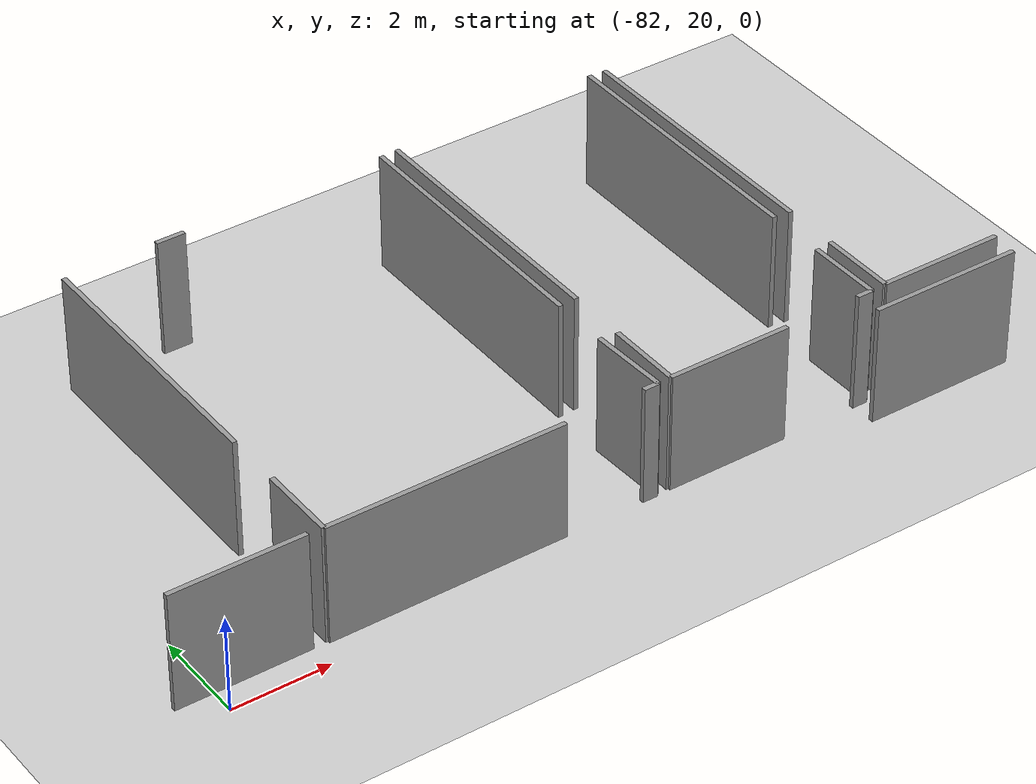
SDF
<sdf version="1.6">
 <world name="default">
  <model name="ground_plane">
   <static>1</static>
   <link name="link">
    <collision name="collision">
     <geometry><plane><normal>0 0 1</normal><size>100 100</size></plane></geometry>
     <surface><friction><ode><mu>100</mu><mu2>50</mu2></ode></friction></surface>
    </collision>
    <visual name="visual">
     <cast_shadows>0</cast_shadows>
     <geometry><plane><normal>0 0 1</normal><size>100 100</size></plane></geometry>
     <material>
      <script><uri>file://media/materials/scripts/gazebo.material</uri><name>Gazebo/Grey</name></script>
     </material>
    </visual>
   </link>
  </model>
  <model name="50010535_PLAN2">
   <static>1</static>
   <link name="Wall_15">
    <collision name="Wall_15_Collision">
     <geometry><box><size>3.17122291189 0.1 2.5</size></box></geometry>
     <pose>1.58561145594 0 1.25 0 0 0</pose>
    </collision>
    <visual name="Wall_15_Visual">
     <pose>1.58561145594 0 1.25 0 0 0</pose>
     <geometry><box><size>3.17122291189 0.1 2.5</size></box></geometry>
     <material>
      <script><uri>file://media/materials/scripts/gazebo.material</uri><name>Gazebo/Grey</name></script>
      <ambient>1 1 1 1</ambient>
     </material>
    </visual>
    <pose>34.2773898846 -9.76471858859 0 0 0 0.0</pose>
   </link>
   <link name="Wall_31">
    <collision name="Wall_31_Collision">
     <geometry><box><size>2.75115467939 0.1 2.5</size></box></geometry>
     <pose>1.37557733969 0 1.25 0 0 0</pose>
    </collision>
    <visual name="Wall_31_Visual">
     <pose>1.37557733969 0 1.25 0 0 0</pose>
     <geometry><box><size>2.75115467939 0.1 2.5</size></box></geometry>
     <material>
      <script><uri>file://media/materials/scripts/gazebo.material</uri><name>Gazebo/Grey</name></script>
      <ambient>1 1 1 1</ambient>
     </material>
    </visual>
    <pose>22.5746904443 -9.22699059103 0 0 0 3.14159265359</pose>
   </link>
   <link name="Wall_38">
    <collision name="Wall_38_Collision">
     <geometry><box><size>0.317401828428 0.1 2.5</size></box></geometry>
     <pose>0.158700914214 0 1.25 0 0 0</pose>
    </collision>
    <visual name="Wall_38_Visual">
     <pose>0.158700914214 0 1.25 0 0 0</pose>
     <geometry><box><size>0.317401828428 0.1 2.5</size></box></geometry>
     <material>
      <script><uri>file://media/materials/scripts/gazebo.material</uri><name>Gazebo/Grey</name></script>
      <ambient>1 1 1 1</ambient>
     </material>
    </visual>
    <pose>29.7936125741 -9.25392781586 0 0 0 3.14159265359</pose>
   </link>
   <link name="Wall_39">
    <collision name="Wall_39_Collision">
     <geometry><box><size>4.9470467526 0.1 2.5</size></box></geometry>
     <pose>2.4735233763 0 1.25 0 0 0</pose>
    </collision>
    <visual name="Wall_39_Visual">
     <pose>2.4735233763 0 1.25 0 0 0</pose>
     <geometry><box><size>4.9470467526 0.1 2.5</size></box></geometry>
     <material>
      <script><uri>file://media/materials/scripts/gazebo.material</uri><name>Gazebo/Grey</name></script>
      <ambient>1 1 1 1</ambient>
     </material>
    </visual>
    <pose>27.8231291653 -9.25392781586 0 0 0 3.14159265359</pose>
   </link>
   <link name="Wall_40">
    <collision name="Wall_40_Collision">
     <geometry><box><size>1.62080773556 0.1 2.5</size></box></geometry>
     <pose>0.810403867779 0 1.25 0 0 0</pose>
    </collision>
    <visual name="Wall_40_Visual">
     <pose>0.810403867779 0 1.25 0 0 0</pose>
     <geometry><box><size>1.62080773556 0.1 2.5</size></box></geometry>
     <material>
      <script><uri>file://media/materials/scripts/gazebo.material</uri><name>Gazebo/Grey</name></script>
      <ambient>1 1 1 1</ambient>
     </material>
    </visual>
    <pose>22.8760824127 -9.25392781586 0 0 0 1.57079632679</pose>
   </link>
   <link name="Wall_41">
    <collision name="Wall_41_Collision">
     <geometry><box><size>5.86410678323 0.1 2.5</size></box></geometry>
     <pose>2.93205339161 0 1.25 0 0 0</pose>
    </collision>
    <visual name="Wall_41_Visual">
     <pose>2.93205339161 0 1.25 0 0 0</pose>
     <geometry><box><size>5.86410678323 0.1 2.5</size></box></geometry>
     <material>
      <script><uri>file://media/materials/scripts/gazebo.material</uri><name>Gazebo/Grey</name></script>
      <ambient>1 1 1 1</ambient>
     </material>
    </visual>
    <pose>22.8760824127 -6.43731059764 0 0 0 1.57079632679</pose>
   </link>
   <link name="Wall_42">
    <collision name="Wall_42_Collision">
     <geometry><box><size>0.598209691048 0.1 2.5</size></box></geometry>
     <pose>0.299104845524 0 1.25 0 0 0</pose>
    </collision>
    <visual name="Wall_42_Visual">
     <pose>0.299104845524 0 1.25 0 0 0</pose>
     <geometry><box><size>0.598209691048 0.1 2.5</size></box></geometry>
     <material>
      <script><uri>file://media/materials/scripts/gazebo.material</uri><name>Gazebo/Grey</name></script>
      <ambient>1 1 1 1</ambient>
     </material>
    </visual>
    <pose>24.8046352357 -0.573203814413 0 0 0 0.0</pose>
   </link>
   <link name="Wall_43">
    <collision name="Wall_43_Collision">
     <geometry><box><size>5.84896094738 0.1 2.5</size></box></geometry>
     <pose>2.92448047369 0 1.25 0 0 0</pose>
    </collision>
    <visual name="Wall_43_Visual">
     <pose>2.92448047369 0 1.25 0 0 0</pose>
     <geometry><box><size>5.84896094738 0.1 2.5</size></box></geometry>
     <material>
      <script><uri>file://media/materials/scripts/gazebo.material</uri><name>Gazebo/Grey</name></script>
      <ambient>1 1 1 1</ambient>
     </material>
    </visual>
    <pose>29.7227117653 -0.573203814413 0 0 0 -1.57079632679</pose>
   </link>
   <link name="Wall_44">
    <collision name="Wall_44_Collision">
     <geometry><box><size>1.65574386442 0.1 2.5</size></box></geometry>
     <pose>0.827871932209 0 1.25 0 0 0</pose>
    </collision>
    <visual name="Wall_44_Visual">
     <pose>0.827871932209 0 1.25 0 0 0</pose>
     <geometry><box><size>1.65574386442 0.1 2.5</size></box></geometry>
     <material>
      <script><uri>file://media/materials/scripts/gazebo.material</uri><name>Gazebo/Grey</name></script>
      <ambient>1 1 1 1</ambient>
     </material>
    </visual>
    <pose>29.7227117653 -7.59970267403 0 0 0 -1.52796210827</pose>
   </link>
   <link name="Wall_45">
    <collision name="Wall_45_Collision">
     <geometry><box><size>0.328329193217 0.1 2.5</size></box></geometry>
     <pose>0.164164596609 0 1.25 0 0 0</pose>
    </collision>
    <visual name="Wall_45_Visual">
     <pose>0.164164596609 0 1.25 0 0 0</pose>
     <geometry><box><size>0.328329193217 0.1 2.5</size></box></geometry>
     <material>
      <script><uri>file://media/materials/scripts/gazebo.material</uri><name>Gazebo/Grey</name></script>
      <ambient>1 1 1 1</ambient>
     </material>
    </visual>
    <pose>34.5678544882 -9.23969682916 0 0 0 3.14159265359</pose>
   </link>
   <link name="Wall_46">
    <collision name="Wall_46_Collision">
     <geometry><box><size>2.57479209418 0.1 2.5</size></box></geometry>
     <pose>1.28739604709 0 1.25 0 0 0</pose>
    </collision>
    <visual name="Wall_46_Visual">
     <pose>1.28739604709 0 1.25 0 0 0</pose>
     <geometry><box><size>2.57479209418 0.1 2.5</size></box></geometry>
     <material>
      <script><uri>file://media/materials/scripts/gazebo.material</uri><name>Gazebo/Grey</name></script>
      <ambient>1 1 1 1</ambient>
     </material>
    </visual>
    <pose>32.6542950261 -9.23969682916 0 0 0 3.14159265359</pose>
   </link>
   <link name="Wall_47">
    <collision name="Wall_47_Collision">
     <geometry><box><size>1.58980451453 0.1 2.5</size></box></geometry>
     <pose>0.794902257263 0 1.25 0 0 0</pose>
    </collision>
    <visual name="Wall_47_Visual">
     <pose>0.794902257263 0 1.25 0 0 0</pose>
     <geometry><box><size>1.58980451453 0.1 2.5</size></box></geometry>
     <material>
      <script><uri>file://media/materials/scripts/gazebo.material</uri><name>Gazebo/Grey</name></script>
      <ambient>1 1 1 1</ambient>
     </material>
    </visual>
    <pose>30.079502932 -9.23969682916 0 0 0 1.57079632679</pose>
   </link>
   <link name="Wall_48">
    <collision name="Wall_48_Collision">
     <geometry><box><size>5.83689002116 0.1 2.5</size></box></geometry>
     <pose>2.91844501058 0 1.25 0 0 0</pose>
    </collision>
    <visual name="Wall_48_Visual">
     <pose>2.91844501058 0 1.25 0 0 0</pose>
     <geometry><box><size>5.83689002116 0.1 2.5</size></box></geometry>
     <material>
      <script><uri>file://media/materials/scripts/gazebo.material</uri><name>Gazebo/Grey</name></script>
      <ambient>1 1 1 1</ambient>
     </material>
    </visual>
    <pose>30.079502932 -6.39665063563 0 0 0 1.57079632679</pose>
   </link>
   <link name="Wall_49">
    <collision name="Wall_49_Collision">
     <geometry><box><size>5.86240414732 0.1 2.5</size></box></geometry>
     <pose>2.93120207366 0 1.25 0 0 0</pose>
    </collision>
    <visual name="Wall_49_Visual">
     <pose>2.93120207366 0 1.25 0 0 0</pose>
     <geometry><box><size>5.86240414732 0.1 2.5</size></box></geometry>
     <material>
      <script><uri>file://media/materials/scripts/gazebo.material</uri><name>Gazebo/Grey</name></script>
      <ambient>1 1 1 1</ambient>
     </material>
    </visual>
    <pose>34.5508281291 -0.559760614474 0 0 0 -1.57079632679</pose>
   </link>
   <link name="Wall_50">
    <collision name="Wall_50_Collision">
     <geometry><box><size>1.57337853326 0.1 2.5</size></box></geometry>
     <pose>0.786689266632 0 1.25 0 0 0</pose>
    </collision>
    <visual name="Wall_50_Visual">
     <pose>0.786689266632 0 1.25 0 0 0</pose>
     <geometry><box><size>1.57337853326 0.1 2.5</size></box></geometry>
     <material>
      <script><uri>file://media/materials/scripts/gazebo.material</uri><name>Gazebo/Grey</name></script>
      <ambient>1 1 1 1</ambient>
     </material>
    </visual>
    <pose>34.5508281291 -7.6664104242 0 0 0 -1.55997458806</pose>
   </link>
   <link name="Wall_52">
    <collision name="Wall_52_Collision">
     <geometry><box><size>2.60071281996 0.1 2.5</size></box></geometry>
     <pose>1.30035640998 0 1.25 0 0 0</pose>
    </collision>
    <visual name="Wall_52_Visual">
     <pose>1.30035640998 0 1.25 0 0 0</pose>
     <geometry><box><size>2.60071281996 0.1 2.5</size></box></geometry>
     <material>
      <script><uri>file://media/materials/scripts/gazebo.material</uri><name>Gazebo/Grey</name></script>
      <ambient>1 1 1 1</ambient>
     </material>
    </visual>
    <pose>37.4966423766 -9.21885859863 0 0 0 3.14159265359</pose>
   </link>
   <link name="Wall_53">
    <collision name="Wall_53_Collision">
     <geometry><box><size>1.59005863929 0.1 2.5</size></box></geometry>
     <pose>0.795029319644 0 1.25 0 0 0</pose>
    </collision>
    <visual name="Wall_53_Visual">
     <pose>0.795029319644 0 1.25 0 0 0</pose>
     <geometry><box><size>1.59005863929 0.1 2.5</size></box></geometry>
     <material>
      <script><uri>file://media/materials/scripts/gazebo.material</uri><name>Gazebo/Grey</name></script>
      <ambient>1 1 1 1</ambient>
     </material>
    </visual>
    <pose>34.8959295566 -9.21885859863 0 0 0 1.57079632679</pose>
   </link>
   <link name="Wall_54">
    <collision name="Wall_54_Collision">
     <geometry><box><size>5.87503414801 0.1 2.5</size></box></geometry>
     <pose>2.93751707401 0 1.25 0 0 0</pose>
    </collision>
    <visual name="Wall_54_Visual">
     <pose>2.93751707401 0 1.25 0 0 0</pose>
     <geometry><box><size>5.87503414801 0.1 2.5</size></box></geometry>
     <material>
      <script><uri>file://media/materials/scripts/gazebo.material</uri><name>Gazebo/Grey</name></script>
      <ambient>1 1 1 1</ambient>
     </material>
    </visual>
    <pose>34.8959295566 -6.46005476389 0 0 0 1.57079632679</pose>
   </link>
   <pose>-102.6 29.7873404573 0 0 0 0</pose>
  </model>
 </world>
</sdf>
